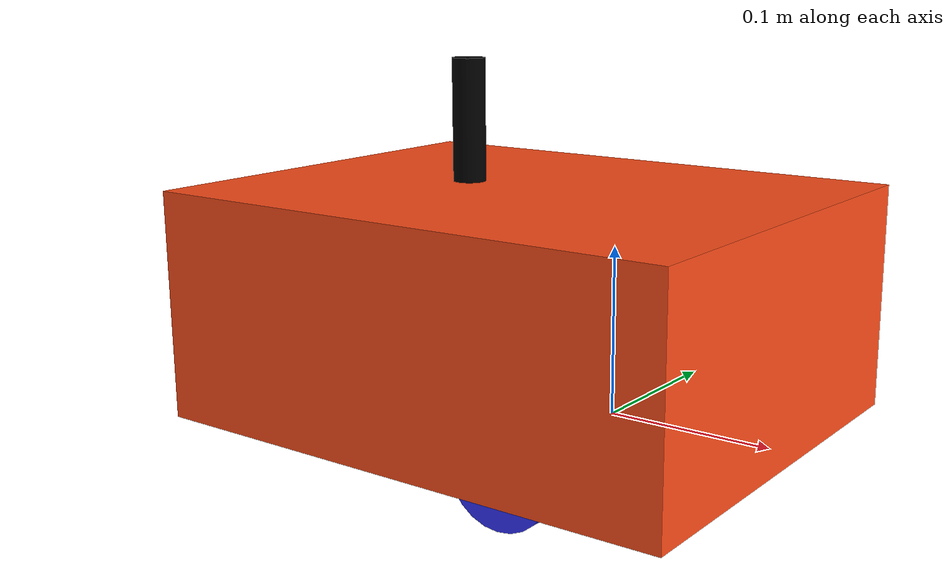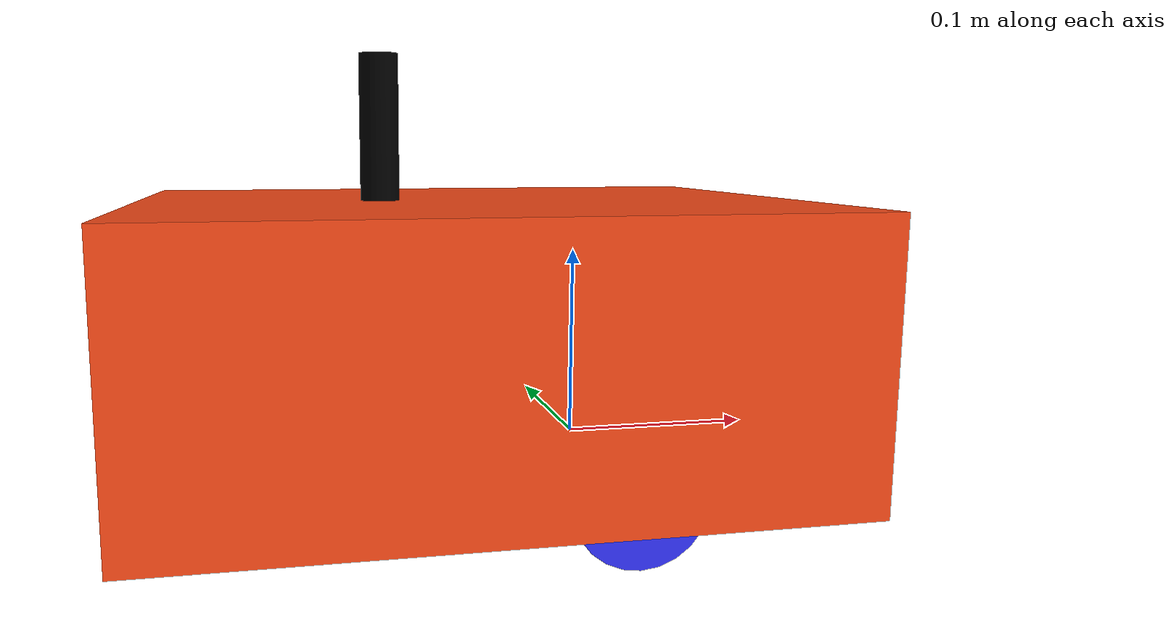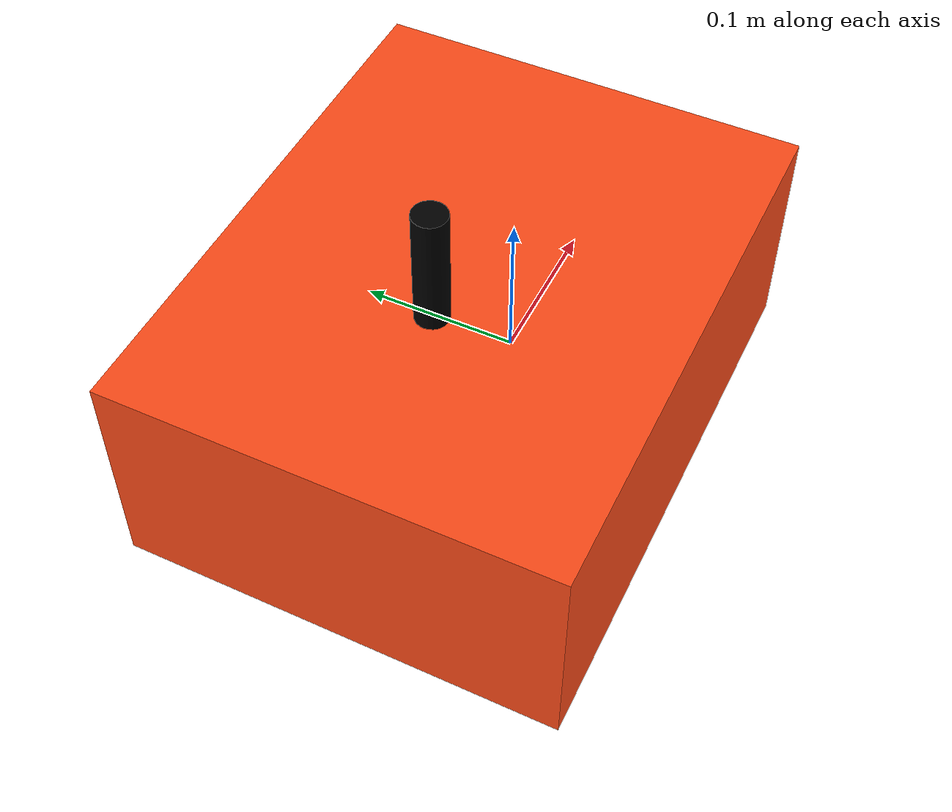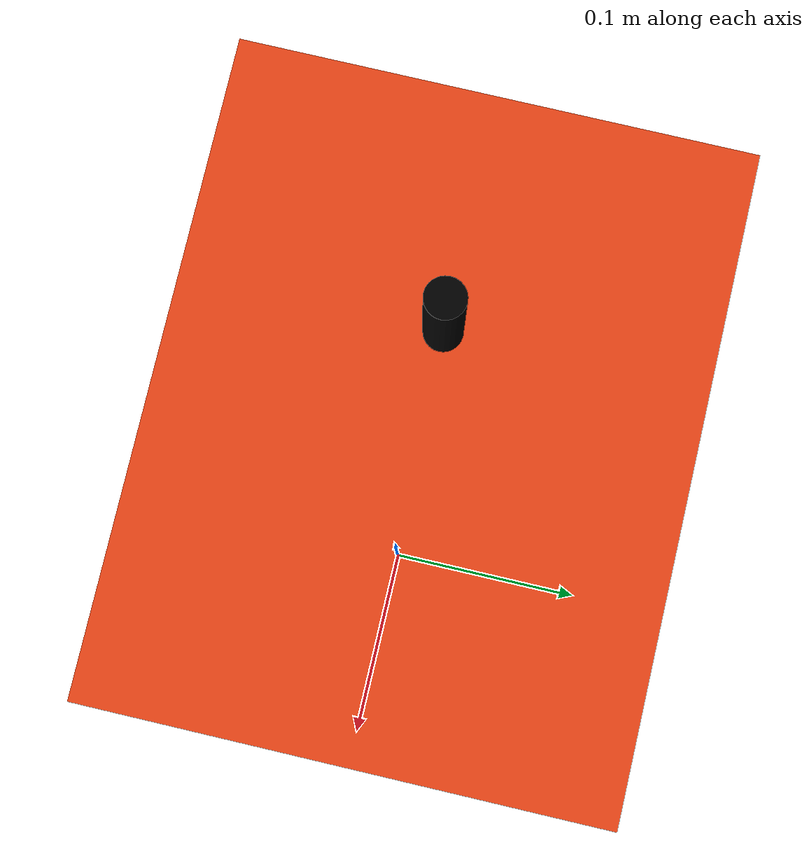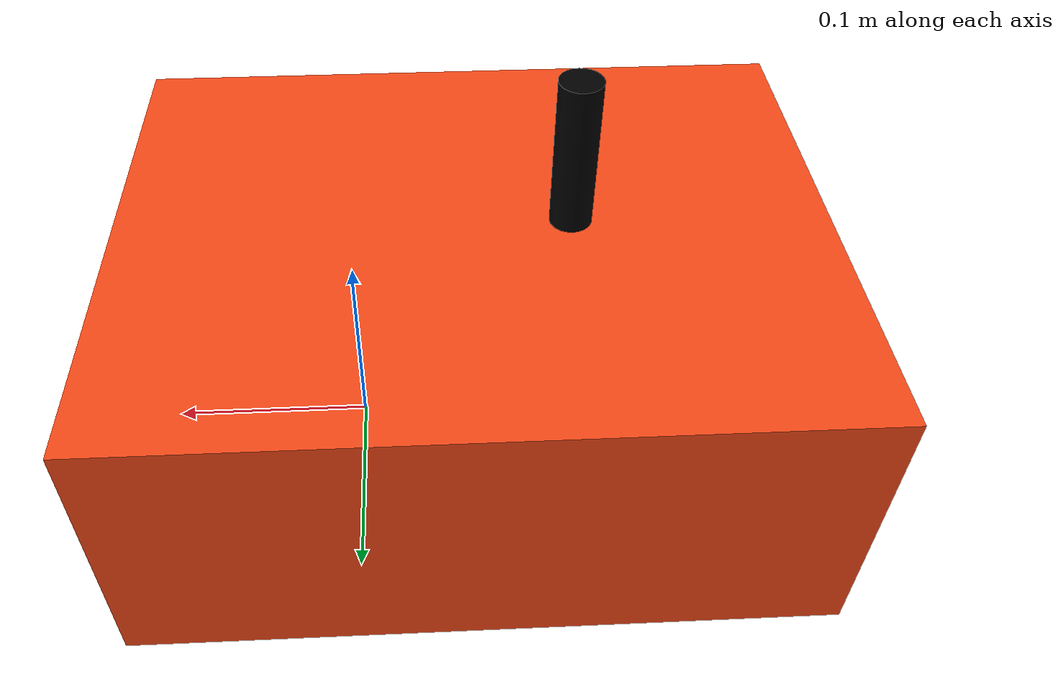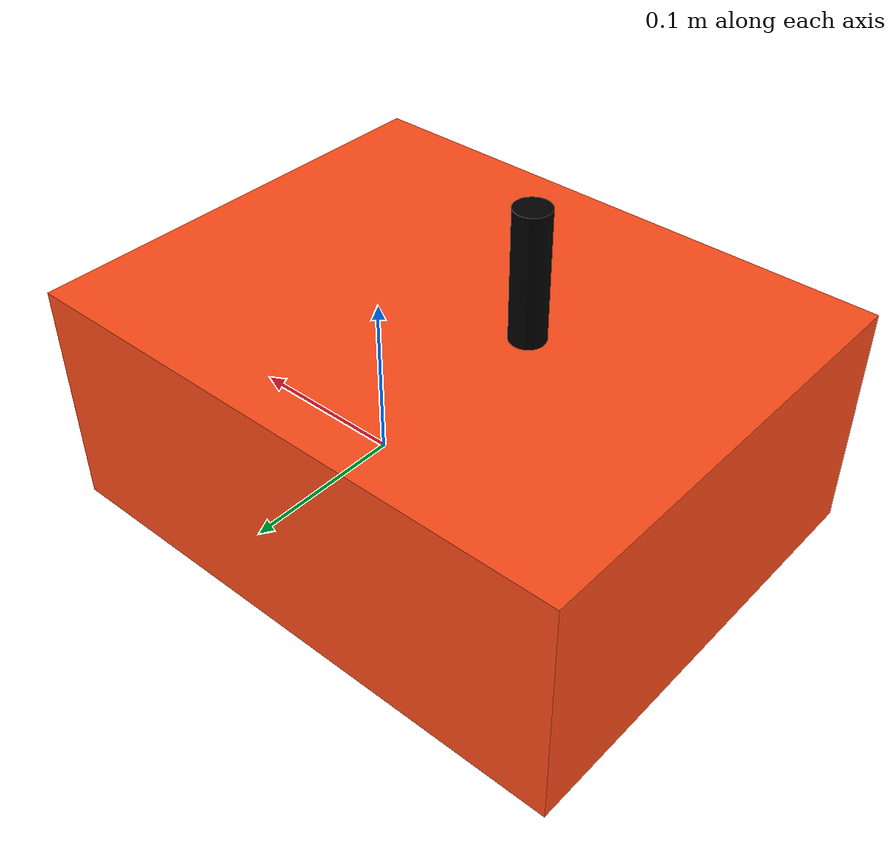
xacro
<?xml version="1.0"?>
<robot xmlns:xacro="http://www.ros.org/wiki/xacro" name="robot">

  <xacro:include filename="inertial_macros.xacro"/>

  <material name="white">
      <color rgba="1 1 1 1" />
  </material>

  <material name="orange">
      <color rgba="1 0.3 0.1 1"/>
  </material>

  <material name="blue">
      <color rgba="0.2 0.2 1 1"/>
  </material>

  <material name="black">
      <color rgba="0 0 0 1"/>
  </material>

  <material name="red">
      <color rgba="1 0 0 1"/>
  </material>

  <!-- BASE LINK -->

  <link name="base_link">

  </link>

  <!-- BASE_FOOTPRINT LINK -->

  <joint name="base_footprint_joint" type="fixed">
    <parent link="base_link"/>
    <child link="base_footprint"/>
    <origin xyz="0 0 0" rpy="0 0 0"/>
  </joint>

  <link name="base_footprint">
  </link>

  <!-- CHASSIS LINK -->

  <joint name="chassis_joint" type="fixed">
    <parent link="base_link"/>
    <child link="chassis"/>
    <origin xyz="-0.226 0 -0.01"/>
  </joint>

  <link name="chassis">
    <visual>
      <origin xyz="0.1675 0 0.069"/>
      <geometry>
        <box size="0.335 0.265 0.138"/>
      </geometry>
      <material name="orange"/>
    </visual>
    <collision>
      <origin xyz="0.1675 0 0.069"/>
      <geometry>
        <box size="0.335 0.265 0.138"/>
      </geometry>
    </collision>
    <xacro:inertial_box mass="0.5" x="0.335" y="0.265" z="0.138">
      <origin xyz="0.1675 0 0.069" rpy="0 0 0"/>
    </xacro:inertial_box>
  </link>

  <!-- LEFT WHEEL LINK -->

  <joint name="left_wheel_joint" type="continuous">
    <parent link="base_link"/>
    <child link="left_wheel"/>
    <origin xyz="0 0.1 0" rpy="-1.57079632679 0 0" />
    <axis xyz="0 0 1"/>
  </joint>

  <link name="left_wheel">
    <visual>
      <geometry>
        <cylinder radius="0.033" length="0.026"/>
      </geometry>
        <material name="blue"/>
    </visual>
    <collision>
      <geometry>
        <cylinder radius="0.033" length="0.026"/>
      </geometry>
    </collision>
    <xacro:inertial_cylinder mass="0.05" length="0.026" radius="0.033">
      <origin xyz="0 0 0" rpy="0 0 0"/>
    </xacro:inertial_cylinder>
  </link>

  <!-- RIGHT WHEEL LINK -->

  <joint name="right_wheel_joint" type="continuous">
    <parent link="base_link"/>
    <child link="right_wheel"/>
    <origin xyz="0 -0.1 0" rpy="1.57079632679 0 0" />
    <axis xyz="0 0 -1"/>
  </joint>

  <link name="right_wheel">
    <visual>
      <geometry>
        <cylinder radius="0.033" length="0.026"/>
      </geometry>
        <material name="blue"/>
    </visual>
    <collision>
      <geometry>
        <cylinder radius="0.033" length="0.026"/>
      </geometry>
    </collision>
    <xacro:inertial_cylinder mass="0.05" length="0.026" radius="0.033">
      <origin xyz="0 0 0" rpy="0 0 0"/>
    </xacro:inertial_cylinder>
  </link>

  <gazebo reference="right_wheel">
    <mu1>0.1</mu1>
    <mu2>0.1</mu2>
    <kp>500000.0</kp>
    <kd>10.0</kd>
    <minDepth>0.001</minDepth>
    <maxVel>0.1</maxVel>
    <fdir1>1 0 0</fdir1>
    <material>Gazebo/FlatBlack</material>
  </gazebo>

  <gazebo reference="left_wheel">
    <mu1>0.1</mu1>
    <mu2>0.1</mu2>
    <kp>500000.0</kp>
    <kd>10.0</kd>
    <minDepth>0.001</minDepth>
    <maxVel>0.1</maxVel>
    <fdir1>1 0 0</fdir1>
    <material>Gazebo/FlatBlack</material>
  </gazebo>

  <!-- CASTER WHEEL LINK -->

  <joint name="caster_wheel_joint" type="fixed">
    <parent link="chassis"/>
    <child link="caster_wheel"/>
    <origin xyz="0.075 0 -0.003"/>
  </joint>

  <link name="caster_wheel">
    <visual>
      <geometry>
          <sphere radius="0.02"/>
      </geometry>
      <material name="white"/>
    </visual>
    <collision>
      <geometry>
        <sphere radius="0.02"/>
      </geometry>
    </collision>
    <xacro:inertial_sphere mass="0.01" radius="0.02">
      <origin xyz="0 0 0" rpy="0 0 0"/>
    </xacro:inertial_sphere>
  </link>

  <gazebo reference="caster_wheel">
    <mu1>0.1</mu1>
    <mu2>0.1</mu2>
    <kp>1000000.0</kp>
    <kd>100.0</kd>
    <minDepth>0.001</minDepth>
    <maxVel>1.0</maxVel>
    <material>Gazebo/FlatBlack</material>
  </gazebo>

  <!-- RPLIDAR A2 -->
  <joint name="laser_joint" type="fixed">
    <parent link="chassis"/>
    <child link="laser_frame"/>
    <origin xyz="0.122 0 0.212" rpy="0 0 0"/>
  </joint>

  <link name="laser_frame">
    <visual>
      <origin xyz="0 0 -0.05"/>
      <geometry>
        <cylinder radius="0.01" length="0.1"/>
      </geometry>
      <material name="black"/>
    </visual>
    <xacro:inertial_cylinder mass="0.1" length="0.04" radius="0.05">
      <origin xyz="0 0 0" rpy="0 0 0"/>
    </xacro:inertial_cylinder>
  </link>

  <gazebo reference="laser_frame">
    <sensor name="laser" type="ray">
      <pose> 0 0 0 0 0 0 </pose>
      <visualize>true</visualize>
      <update_rate>10</update_rate>
      <ray>
        <scan>
          <horizontal>
            <samples>30</samples>
            <resolution>1</resolution>
            <min_angle>-2.0944</min_angle>
            <max_angle>2.0944</max_angle>
          </horizontal>
        </scan>
        <range>
          <min>0.01</min>
          <max>12</max>
          <resolution>0.01</resolution>
        </range>
      </ray>
      <plugin name="laser_controller" filename="libgazebo_ros_laser.so">
        <topicName>scan</topicName>
        <frameName>laser_frame</frameName>
      </plugin>
    </sensor>
  </gazebo>

  <!-- Control System -->
  <gazebo>
    <plugin name="differential_drive_controller" filename="libgazebo_ros_diff_drive.so">

      <!-- Plugin update rate in Hz -->
      <updateRate>11</updateRate>

      <!-- Name of left joint, defaults to `left_joint` -->
      <leftJoint>left_wheel_joint</leftJoint>

      <!-- Name of right joint, defaults to `right_joint` -->
      <rightJoint>right_wheel_joint</rightJoint>

      <!-- The distance from the center of one wheel to the other, in meters, defaults to 0.34 m -->
      <wheelSeparation>0.2</wheelSeparation>

      <!-- Diameter of the wheels, in meters, defaults to 0.15 m -->
      <wheelDiameter>0.066</wheelDiameter>

      <!-- Wheel acceleration, in rad/s^2, defaults to 0.0 rad/s^2 -->
      <wheelAcceleration>0.1</wheelAcceleration>

      <!-- Maximum torque which the wheels can produce, in Nm, defaults to 5 Nm -->
      <wheelTorque>20</wheelTorque>

      <!-- Topic to receive geometry_msgs/Twist message commands, defaults to `cmd_vel` -->
      <commandTopic>cmd_vel</commandTopic>

      <!-- Topic to publish nav_msgs/Odometry messages, defaults to `odom` -->
      <odometryTopic>odom</odometryTopic>

      <!-- Odometry frame, defaults to `odom` -->
      <odometryFrame>odom</odometryFrame>

      <!-- Robot frame to calculate odometry from, defaults to `base_footprint` -->
      <robotBaseFrame>base_link</robotBaseFrame>

      <!-- Odometry source, 0 for ENCODER, 1 for WORLD, defaults to WORLD -->
      <odometrySource>1</odometrySource>

      <!-- Set to true to publish transforms for the wheel links, defaults to false -->
      <publishWheelTF>false</publishWheelTF>

      <!-- Set to true to publish transforms for the odometry, defaults to true -->
      <publishOdom>true</publishOdom>

      <!-- Set to true to publish sensor_msgs/JointState on /joint_states for the wheel joints, defaults to false -->
      <publishWheelJointState>true</publishWheelJointState>

      <!-- Set to true to swap right and left wheels, defaults to true -->
      <legacyMode>false</legacyMode>
    </plugin>
  </gazebo>

</robot>
